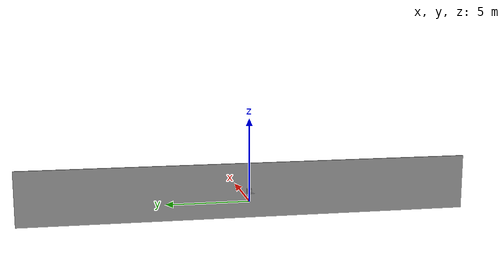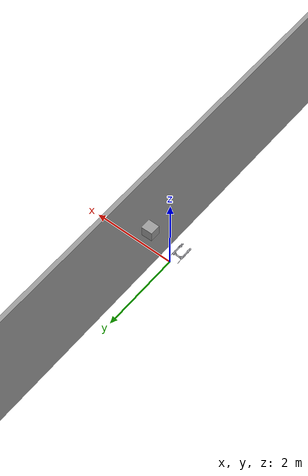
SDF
<?xml version='1.0'?>
<sdf version='1.7'>
  <model name='bot'>
    <link name='link_0'>
      <inertial>
        <mass>10.1677</mass>
        <inertia>
          <ixx>660.564</ixx>
          <ixy>0</ixy>
          <ixz>0</ixz>
          <iyy>9.64046</iyy>
          <iyz>0</iyz>
          <izz>650.944</izz>
        </inertia>
        <pose>0 0 0 0 -0 0</pose>
      </inertial>
      <pose>0.818562 -0.106143 0.5 0 -0 0</pose>
      <gravity>1</gravity>
      <self_collide>0</self_collide>
      <kinematic>1</kinematic>
      <enable_wind>0</enable_wind>
      <visual name='visual'>
        <pose>0 0 0 0 -0 0</pose>
        <geometry>
          <box>
            <size>0.10879 27.7171 3.37134</size>
          </box>
        </geometry>
        <material>
          <lighting>1</lighting>
          <script>
            <uri>file://media/materials/scripts/gazebo.material</uri>
            <name>Gazebo/Grey</name>
          </script>
          <shader type='pixel'>
            <normal_map>__default__</normal_map>
          </shader>
          <emissive>0 0 0 1</emissive>
        </material>
        <transparency>0</transparency>
        <cast_shadows>1</cast_shadows>
      </visual>
      <collision name='collision'>
        <laser_retro>0</laser_retro>
        <max_contacts>10</max_contacts>
        <pose>0 0 0 0 -0 0</pose>
        <geometry>
          <box>
            <size>0.10879 27.7171 3.37134</size>
          </box>
        </geometry>
        <surface>
          <friction>
            <ode>
              <mu>1</mu>
              <mu2>1</mu2>
              <fdir1>0 0 0</fdir1>
              <slip1>0</slip1>
              <slip2>0</slip2>
            </ode>
            <torsional>
              <coefficient>1</coefficient>
              <patch_radius>0</patch_radius>
              <surface_radius>0</surface_radius>
              <use_patch_radius>1</use_patch_radius>
              <ode>
                <slip>0</slip>
              </ode>
            </torsional>
          </friction>
          <bounce>
            <restitution_coefficient>0</restitution_coefficient>
            <threshold>1e+06</threshold>
          </bounce>
          <contact>
            <collide_without_contact>0</collide_without_contact>
            <collide_without_contact_bitmask>1</collide_without_contact_bitmask>
            <collide_bitmask>1</collide_bitmask>
            <ode>
              <soft_cfm>0</soft_cfm>
              <soft_erp>0.2</soft_erp>
              <kp>1e+13</kp>
              <kd>1</kd>
              <max_vel>0.01</max_vel>
              <min_depth>0</min_depth>
            </ode>
            <bullet>
              <split_impulse>1</split_impulse>
              <split_impulse_penetration_threshold>-0.01</split_impulse_penetration_threshold>
              <soft_cfm>0</soft_cfm>
              <soft_erp>0.2</soft_erp>
              <kp>1e+13</kp>
              <kd>1</kd>
            </bullet>
          </contact>
        </surface>
      </collision>
    </link>
    <link name='base_link'>
      <pose>0 0 0 0 -0 0</pose>
      <inertial>
        <pose>-0.273515 0.064192 0.549095 0 -0 0</pose>
        <mass>0.6</mass>
        <inertia>
          <ixx>5.9e-05</ixx>
          <ixy>0</ixy>
          <ixz>0</ixz>
          <iyy>0.000497</iyy>
          <iyz>0</iyz>
          <izz>0.000496</izz>
        </inertia>
      </inertial>
      <gravity>1</gravity>
      <velocity_decay/>
      <self_collide>1</self_collide>
      <gravity>1</gravity>
      <enable_wind>0</enable_wind>
      <kinematic>0</kinematic>
      <visual name='base_link_visual'>
        <pose>0 0 0 0 -0 0</pose>
        <geometry>
          <mesh>
            <scale>0.001 0.001 0.001</scale>
            <uri>/home/devlon/robotics_masters/droid/src/bot_description/meshes/base_link.stl</uri>
          </mesh>
        </geometry>
        <material>
          <script>
            <name>Gazebo/Silver</name>
            <uri>file://media/materials/scripts/gazebo.material</uri>
          </script>
          <shader type='pixel'/>
          <emissive>0 0 0 1</emissive>
        </material>
        <transparency>0</transparency>
        <cast_shadows>1</cast_shadows>
      </visual>
      <collision name='base_link_collision'>
        <laser_retro>0</laser_retro>
        <max_contacts>10</max_contacts>
        <pose>0 0 0 0 -0 0</pose>
        <geometry>
          <mesh>
            <uri>/home/devlon/robotics_masters/droid/src/bot_description/meshes/base_link.stl</uri>
            <scale>0.001 0.001 0.001</scale>
          </mesh>
        </geometry>
        <surface>
          <friction>
            <ode>
              <mu>0.2</mu>
              <mu2>0.2</mu2>
              <fdir1>0 0 0</fdir1>
              <slip1>0</slip1>
              <slip2>0</slip2>
            </ode>
            <torsional>
              <coefficient>1</coefficient>
              <patch_radius>0</patch_radius>
              <surface_radius>0</surface_radius>
              <use_patch_radius>1</use_patch_radius>
              <ode>
                <slip>0</slip>
              </ode>
            </torsional>
          </friction>
          <bounce>
            <restitution_coefficient>0</restitution_coefficient>
            <threshold>1e+06</threshold>
          </bounce>
          <contact>
            <collide_without_contact>0</collide_without_contact>
            <collide_without_contact_bitmask>1</collide_without_contact_bitmask>
            <collide_bitmask>1</collide_bitmask>
            <ode>
              <soft_cfm>0</soft_cfm>
              <soft_erp>0.2</soft_erp>
              <kp>1e+13</kp>
              <kd>1</kd>
              <max_vel>0.01</max_vel>
              <min_depth>0</min_depth>
            </ode>
            <bullet>
              <split_impulse>1</split_impulse>
              <split_impulse_penetration_threshold>-0.01</split_impulse_penetration_threshold>
              <soft_cfm>0</soft_cfm>
              <soft_erp>0.2</soft_erp>
              <kp>1e+13</kp>
              <kd>1</kd>
            </bullet>
          </contact>
        </surface>
      </collision>
    </link>
    <link name='dsnu-20-200-pps-a_03_1_1_1'>
      <pose>-0.179003 -0.205808 0.566678 -1.5708 0 0</pose>
      <inertial>
        <pose>0.019646 1.4e-05 0.092337 0 -0 0</pose>
        <mass>0.12</mass>
        <inertia>
          <ixx>0.006662</ixx>
          <ixy>0</ixy>
          <ixz>-0.000264</ixz>
          <iyy>0.006701</iyy>
          <iyz>0</iyz>
          <izz>4.6e-05</izz>
        </inertia>
      </inertial>
      <gravity>1</gravity>
      <velocity_decay/>
      <self_collide>1</self_collide>
      <enable_wind>0</enable_wind>
      <kinematic>0</kinematic>
      <visual name='dsnu-20-200-pps-a_03_1_1_1_visual'>
        <pose>0.179003 -0.064193 -0.296678 0 -0 0</pose>
        <geometry>
          <mesh>
            <scale>0.001 0.001 0.001</scale>
            <uri>/home/devlon/robotics_masters/droid/src/bot_description/meshes/dsnu-20-200-pps-a_03_1_1_1.stl</uri>
          </mesh>
        </geometry>
        <material>
          <script>
            <name>Gazebo/Silver</name>
            <uri>file://media/materials/scripts/gazebo.material</uri>
          </script>
          <shader type='pixel'/>
        </material>
        <transparency>0</transparency>
        <cast_shadows>1</cast_shadows>
      </visual>
      <collision name='dsnu-20-200-pps-a_03_1_1_1_collision'>
        <laser_retro>0</laser_retro>
        <max_contacts>10</max_contacts>
        <pose>0.179003 -0.064193 -0.296678 0 -0 0</pose>
        <geometry>
          <mesh>
            <uri>/home/devlon/robotics_masters/droid/src/bot_description/meshes/dsnu-20-200-pps-a_03_1_1_1.stl</uri>
            <scale>0.001 0.001 0.001</scale>
          </mesh>
        </geometry>
        <surface>
          <friction>
            <ode>
              <mu>0.2</mu>
              <mu2>0.2</mu2>
              <fdir1>0 0 0</fdir1>
              <slip1>0</slip1>
              <slip2>0</slip2>
            </ode>
            <torsional>
              <coefficient>1</coefficient>
              <patch_radius>0</patch_radius>
              <surface_radius>0</surface_radius>
              <use_patch_radius>1</use_patch_radius>
              <ode>
                <slip>0</slip>
              </ode>
            </torsional>
          </friction>
          <bounce>
            <restitution_coefficient>0</restitution_coefficient>
            <threshold>1e+06</threshold>
          </bounce>
          <contact>
            <collide_without_contact>0</collide_without_contact>
            <collide_without_contact_bitmask>1</collide_without_contact_bitmask>
            <collide_bitmask>1</collide_bitmask>
            <ode>
              <soft_cfm>0</soft_cfm>
              <soft_erp>0.2</soft_erp>
              <kp>1e+13</kp>
              <kd>1</kd>
              <max_vel>0.01</max_vel>
              <min_depth>0</min_depth>
            </ode>
            <bullet>
              <split_impulse>1</split_impulse>
              <split_impulse_penetration_threshold>-0.01</split_impulse_penetration_threshold>
              <soft_cfm>0</soft_cfm>
              <soft_erp>0.2</soft_erp>
              <kp>1e+13</kp>
              <kd>1</kd>
            </bullet>
          </contact>
        </surface>
      </collision>
    </link>
    <link name='dsnu-20-200-pps-a_03_1_1_Mirror__1'>
      <pose>-0.368028 -0.205808 0.566678 -1.5708 0 0</pose>
      <inertial>
        <pose>-0.019645 1.4e-05 0.092337 0 -0 0</pose>
        <mass>0.12</mass>
        <inertia>
          <ixx>0.006662</ixx>
          <ixy>0</ixy>
          <ixz>0.000264</ixz>
          <iyy>0.006701</iyy>
          <iyz>0</iyz>
          <izz>4.6e-05</izz>
        </inertia>
      </inertial>
      <gravity>1</gravity>
      <velocity_decay/>
      <self_collide>1</self_collide>
      <enable_wind>0</enable_wind>
      <kinematic>0</kinematic>
      <visual name='dsnu-20-200-pps-a_03_1_1_Mirror__1_visual'>
        <pose>0.368028 -0.064193 -0.296678 0 -0 0</pose>
        <geometry>
          <mesh>
            <scale>0.001 0.001 0.001</scale>
            <uri>/home/devlon/robotics_masters/droid/src/bot_description/meshes/dsnu-20-200-pps-a_03_1_1_Mirror__1.stl</uri>
          </mesh>
        </geometry>
        <material>
          <script>
            <name>Gazebo/Silver</name>
            <uri>file://media/materials/scripts/gazebo.material</uri>
          </script>
          <shader type='pixel'/>
        </material>
        <transparency>0</transparency>
        <cast_shadows>1</cast_shadows>
      </visual>
      <collision name='dsnu-20-200-pps-a_03_1_1_Mirror__1_collision'>
        <laser_retro>0</laser_retro>
        <max_contacts>10</max_contacts>
        <pose>0.368028 -0.064193 -0.296678 0 -0 0</pose>
        <geometry>
          <mesh>
            <uri>/home/devlon/robotics_masters/droid/src/bot_description/meshes/dsnu-20-200-pps-a_03_1_1_Mirror__1.stl</uri>
            <scale>0.001 0.001 0.001</scale>
          </mesh>
        </geometry>
        <surface>
          <friction>
            <ode>
              <mu>0.2</mu>
              <mu2>0.2</mu2>
              <fdir1>0 0 0</fdir1>
              <slip1>0</slip1>
              <slip2>0</slip2>
            </ode>
            <torsional>
              <coefficient>1</coefficient>
              <patch_radius>0</patch_radius>
              <surface_radius>0</surface_radius>
              <use_patch_radius>1</use_patch_radius>
              <ode>
                <slip>0</slip>
              </ode>
            </torsional>
          </friction>
          <bounce>
            <restitution_coefficient>0</restitution_coefficient>
            <threshold>1e+06</threshold>
          </bounce>
          <contact>
            <collide_without_contact>0</collide_without_contact>
            <collide_without_contact_bitmask>1</collide_without_contact_bitmask>
            <collide_bitmask>1</collide_bitmask>
            <ode>
              <soft_cfm>0</soft_cfm>
              <soft_erp>0.2</soft_erp>
              <kp>1e+13</kp>
              <kd>1</kd>
              <max_vel>0.01</max_vel>
              <min_depth>0</min_depth>
            </ode>
            <bullet>
              <split_impulse>1</split_impulse>
              <split_impulse_penetration_threshold>-0.01</split_impulse_penetration_threshold>
              <soft_cfm>0</soft_cfm>
              <soft_erp>0.2</soft_erp>
              <kp>1e+13</kp>
              <kd>1</kd>
            </bullet>
          </contact>
        </surface>
      </collision>
    </link>
    <link name='link_2'>
      <inertial>
        <mass>0.00195177</mass>
        <inertia>
          <ixx>2.277e-05</ixx>
          <ixy>0</ixy>
          <ixz>0</ixz>
          <iyy>2.445e-05</iyy>
          <iyz>0</iyz>
          <izz>2.364e-05</izz>
        </inertia>
        <pose>0 0 0 0 -0 0</pose>
      </inertial>
      <pose>0.624167 -0.11119 0.5 0 -0 0</pose>
      <gravity>1</gravity>
      <self_collide>0</self_collide>
      <kinematic>0</kinematic>
      <enable_wind>0</enable_wind>
      <visual name='visual'>
        <pose>0 0 0 0 -0 0</pose>
        <geometry>
          <box>
            <size>0.27905 0.259813 0.269206</size>
          </box>
        </geometry>
        <material>
          <lighting>1</lighting>
          <script>
            <uri>file://media/materials/scripts/gazebo.material</uri>
            <name>Gazebo/Grey</name>
          </script>
          <shader type='pixel'>
            <normal_map>__default__</normal_map>
          </shader>
          <emissive>0 0 0 1</emissive>
        </material>
        <transparency>0</transparency>
        <cast_shadows>1</cast_shadows>
      </visual>
      <collision name='collision'>
        <laser_retro>0</laser_retro>
        <max_contacts>10</max_contacts>
        <pose>0 0 0 0 -0 0</pose>
        <geometry>
          <box>
            <size>0.27905 0.259813 0.269206</size>
          </box>
        </geometry>
        <surface>
          <friction>
            <ode>
              <mu>1</mu>
              <mu2>1</mu2>
              <fdir1>0 0 0</fdir1>
              <slip1>0</slip1>
              <slip2>0</slip2>
            </ode>
            <torsional>
              <coefficient>1</coefficient>
              <patch_radius>0</patch_radius>
              <surface_radius>0</surface_radius>
              <use_patch_radius>1</use_patch_radius>
              <ode>
                <slip>0</slip>
              </ode>
            </torsional>
          </friction>
          <bounce>
            <restitution_coefficient>0</restitution_coefficient>
            <threshold>1e+06</threshold>
          </bounce>
          <contact>
            <collide_without_contact>0</collide_without_contact>
            <collide_without_contact_bitmask>1</collide_without_contact_bitmask>
            <collide_bitmask>1</collide_bitmask>
            <ode>
              <soft_cfm>0</soft_cfm>
              <soft_erp>0.2</soft_erp>
              <kp>1e+13</kp>
              <kd>1</kd>
              <max_vel>0.01</max_vel>
              <min_depth>0</min_depth>
            </ode>
            <bullet>
              <split_impulse>1</split_impulse>
              <split_impulse_penetration_threshold>-0.01</split_impulse_penetration_threshold>
              <soft_cfm>0</soft_cfm>
              <soft_erp>0.2</soft_erp>
              <kp>1e+13</kp>
              <kd>1</kd>
            </bullet>
          </contact>
        </surface>
      </collision>
    </link>
    <link name='servo_arm_1_1_1'>
      <pose>-0.203153 0.064192 0.566678 -1.5708 0 0</pose>
      <inertial>
        <pose>0.040124 2.3e-05 -0.130422 0 -0 0</pose>
        <mass>0.33</mass>
        <inertia>
          <ixx>0.002875</ixx>
          <ixy>0</ixy>
          <ixz>-2.3e-05</ixz>
          <iyy>0.002924</iyy>
          <iyz>0</iyz>
          <izz>0.000106</izz>
        </inertia>
      </inertial>
      <gravity>1</gravity>
      <velocity_decay/>
      <self_collide>1</self_collide>
      <enable_wind>0</enable_wind>
      <kinematic>0</kinematic>
      <visual name='servo_arm_1_1_1_visual'>
        <pose>0.203153 -0.064192 -0.566678 0 -0 0</pose>
        <geometry>
          <mesh>
            <scale>0.001 0.001 0.001</scale>
            <uri>/home/devlon/robotics_masters/droid/src/bot_description/meshes/servo_arm_1_1_1.stl</uri>
          </mesh>
        </geometry>
        <material>
          <script>
            <name>Gazebo/Silver</name>
            <uri>file://media/materials/scripts/gazebo.material</uri>
          </script>
          <shader type='pixel'/>
        </material>
        <transparency>0</transparency>
        <cast_shadows>1</cast_shadows>
      </visual>
      <collision name='servo_arm_1_1_1_collision'>
        <laser_retro>0</laser_retro>
        <max_contacts>10</max_contacts>
        <pose>0.203153 -0.064192 -0.566678 0 -0 0</pose>
        <geometry>
          <mesh>
            <uri>/home/devlon/robotics_masters/droid/src/bot_description/meshes/servo_arm_1_1_1.stl</uri>
            <scale>0.001 0.001 0.001</scale>
          </mesh>
        </geometry>
        <surface>
          <friction>
            <ode>
              <mu>0.2</mu>
              <mu2>0.2</mu2>
              <fdir1>0 0 0</fdir1>
              <slip1>0</slip1>
              <slip2>0</slip2>
            </ode>
            <torsional>
              <coefficient>1</coefficient>
              <patch_radius>0</patch_radius>
              <surface_radius>0</surface_radius>
              <use_patch_radius>1</use_patch_radius>
              <ode>
                <slip>0</slip>
              </ode>
            </torsional>
          </friction>
          <bounce>
            <restitution_coefficient>0</restitution_coefficient>
            <threshold>1e+06</threshold>
          </bounce>
          <contact>
            <collide_without_contact>0</collide_without_contact>
            <collide_without_contact_bitmask>1</collide_without_contact_bitmask>
            <collide_bitmask>1</collide_bitmask>
            <ode>
              <soft_cfm>0</soft_cfm>
              <soft_erp>0.2</soft_erp>
              <kp>1e+13</kp>
              <kd>1</kd>
              <max_vel>0.01</max_vel>
              <min_depth>0</min_depth>
            </ode>
            <bullet>
              <split_impulse>1</split_impulse>
              <split_impulse_penetration_threshold>-0.01</split_impulse_penetration_threshold>
              <soft_cfm>0</soft_cfm>
              <soft_erp>0.2</soft_erp>
              <kp>1e+13</kp>
              <kd>1</kd>
            </bullet>
          </contact>
        </surface>
      </collision>
    </link>
    <link name='servo_arm_1_1_Mirror__1'>
      <pose>-0.343878 0.064192 0.566678 -1.5708 0 0</pose>
      <inertial>
        <pose>-0.040124 2.3e-05 -0.130422 0 -0 0</pose>
        <mass>0.33</mass>
        <inertia>
          <ixx>0.002875</ixx>
          <ixy>0</ixy>
          <ixz>2.3e-05</ixz>
          <iyy>0.002924</iyy>
          <iyz>0</iyz>
          <izz>0.000106</izz>
        </inertia>
      </inertial>
      <gravity>1</gravity>
      <velocity_decay/>
      <self_collide>1</self_collide>
      <enable_wind>0</enable_wind>
      <kinematic>0</kinematic>
      <visual name='servo_arm_1_1_Mirror__1_visual'>
        <pose>0.343878 -0.064192 -0.566678 0 -0 0</pose>
        <geometry>
          <mesh>
            <scale>0.001 0.001 0.001</scale>
            <uri>/home/devlon/robotics_masters/droid/src/bot_description/meshes/servo_arm_1_1_Mirror__1.stl</uri>
          </mesh>
        </geometry>
        <material>
          <script>
            <name>Gazebo/Silver</name>
            <uri>file://media/materials/scripts/gazebo.material</uri>
          </script>
          <shader type='pixel'/>
        </material>
        <transparency>0</transparency>
        <cast_shadows>1</cast_shadows>
      </visual>
      <collision name='servo_arm_1_1_Mirror__1_collision'>
        <laser_retro>0</laser_retro>
        <max_contacts>10</max_contacts>
        <pose>0.343878 -0.064192 -0.566678 0 -0 0</pose>
        <geometry>
          <mesh>
            <uri>/home/devlon/robotics_masters/droid/src/bot_description/meshes/servo_arm_1_1_Mirror__1.stl</uri>
            <scale>0.001 0.001 0.001</scale>
          </mesh>
        </geometry>
        <surface>
          <friction>
            <ode>
              <mu>0.2</mu>
              <mu2>0.2</mu2>
              <fdir1>0 0 0</fdir1>
              <slip1>0</slip1>
              <slip2>0</slip2>
            </ode>
            <torsional>
              <coefficient>1</coefficient>
              <patch_radius>0</patch_radius>
              <surface_radius>0</surface_radius>
              <use_patch_radius>1</use_patch_radius>
              <ode>
                <slip>0</slip>
              </ode>
            </torsional>
          </friction>
          <bounce>
            <restitution_coefficient>0</restitution_coefficient>
            <threshold>1e+06</threshold>
          </bounce>
          <contact>
            <collide_without_contact>0</collide_without_contact>
            <collide_without_contact_bitmask>1</collide_without_contact_bitmask>
            <collide_bitmask>1</collide_bitmask>
            <ode>
              <soft_cfm>0</soft_cfm>
              <soft_erp>0.2</soft_erp>
              <kp>1e+13</kp>
              <kd>1</kd>
              <max_vel>0.01</max_vel>
              <min_depth>0</min_depth>
            </ode>
            <bullet>
              <split_impulse>1</split_impulse>
              <split_impulse_penetration_threshold>-0.01</split_impulse_penetration_threshold>
              <soft_cfm>0</soft_cfm>
              <soft_erp>0.2</soft_erp>
              <kp>1e+13</kp>
              <kd>1</kd>
            </bullet>
          </contact>
        </surface>
      </collision>
    </link>
    <joint name='RevL' type='revolute'>
      <parent>base_link</parent>
      <child>servo_arm_1_1_Mirror__1</child>
      <pose>0 -0 0 0 -0 0</pose>
      <axis>
        <xyz>1 0 0</xyz>
        <limit>
          <lower>0</lower>
          <upper>3.14159</upper>
          <effort>100</effort>
          <velocity>100</velocity>
        </limit>
        <dynamics>
          <spring_reference>0</spring_reference>
          <spring_stiffness>0</spring_stiffness>
          <damping>0</damping>
          <friction>0</friction>
        </dynamics>
      </axis>
      <physics>
        <ode>
          <limit>
            <cfm>0</cfm>
            <erp>0.2</erp>
          </limit>
          <suspension>
            <cfm>0</cfm>
            <erp>0.2</erp>
          </suspension>
        </ode>
      </physics>
    </joint>
    <joint name='RevR' type='revolute'>
      <parent>base_link</parent>
      <child>servo_arm_1_1_1</child>
      <pose>-0 -0 0 0 -0 0</pose>
      <axis>
        <xyz>1 0 0</xyz>
        <limit>
          <lower>0</lower>
          <upper>3.14159</upper>
          <effort>100</effort>
          <velocity>100</velocity>
        </limit>
        <dynamics>
          <spring_reference>0</spring_reference>
          <spring_stiffness>0</spring_stiffness>
          <damping>0</damping>
          <friction>0</friction>
        </dynamics>
      </axis>
      <physics>
        <ode>
          <limit>
            <cfm>0</cfm>
            <erp>0.2</erp>
          </limit>
          <suspension>
            <cfm>0</cfm>
            <erp>0.2</erp>
          </suspension>
        </ode>
      </physics>
    </joint>
    <joint name='SliderL' type='prismatic'>
      <parent>servo_arm_1_1_Mirror__1</parent>
      <child>dsnu-20-200-pps-a_03_1_1_Mirror__1</child>
      <pose>0 -0 0 0 -0 0</pose>
      <axis>
        <xyz>0 0 -1</xyz>
        <limit>
          <lower>0</lower>
          <upper>0.19</upper>
          <effort>100</effort>
          <velocity>100</velocity>
        </limit>
        <dynamics>
          <spring_reference>0</spring_reference>
          <spring_stiffness>0</spring_stiffness>
          <damping>0</damping>
          <friction>0</friction>
        </dynamics>
      </axis>
      <physics>
        <ode>
          <limit>
            <cfm>0</cfm>
            <erp>0.2</erp>
          </limit>
          <suspension>
            <cfm>0</cfm>
            <erp>0.2</erp>
          </suspension>
        </ode>
      </physics>
    </joint>
    <joint name='SliderR' type='prismatic'>
      <parent>servo_arm_1_1_1</parent>
      <child>dsnu-20-200-pps-a_03_1_1_1</child>
      <pose>-0 -0 0 0 -0 0</pose>
      <axis>
        <xyz>0 0 -1</xyz>
        <limit>
          <lower>0</lower>
          <upper>0.19</upper>
          <effort>100</effort>
          <velocity>100</velocity>
        </limit>
        <dynamics>
          <spring_reference>0</spring_reference>
          <spring_stiffness>0</spring_stiffness>
          <damping>0</damping>
          <friction>0</friction>
        </dynamics>
      </axis>
      <physics>
        <ode>
          <limit>
            <cfm>0</cfm>
            <erp>0.2</erp>
          </limit>
          <suspension>
            <cfm>0</cfm>
            <erp>0.2</erp>
          </suspension>
        </ode>
      </physics>
    </joint>
    <joint name='link_0_JOINT_2' type='prismatic'>
      <parent>link_0</parent>
      <child>link_2</child>
      <pose>0 0 0 0 -0 0</pose>
      <axis>
        <xyz>0 1 0</xyz>
        <limit>
          <lower>-1.79769e+308</lower>
          <upper>1.79769e+308</upper>
          <effort>-1</effort>
          <velocity>-1</velocity>
        </limit>
        <dynamics>
          <spring_reference>0</spring_reference>
          <spring_stiffness>0</spring_stiffness>
          <damping>0</damping>
        </dynamics>
      </axis>
      <physics>
        <ode>
          <limit>
            <cfm>0</cfm>
            <erp>0.2</erp>
          </limit>
          <suspension>
            <cfm>0</cfm>
            <erp>0.2</erp>
          </suspension>
        </ode>
      </physics>
    </joint>
    <static>0</static>
    <allow_auto_disable>1</allow_auto_disable>
    <plugin name='gazebo_ros_control' filename='libgazebo_ros_control.so'>
      <robotNamespace>/bot</robotNamespace>
    </plugin>
  </model>
</sdf>
